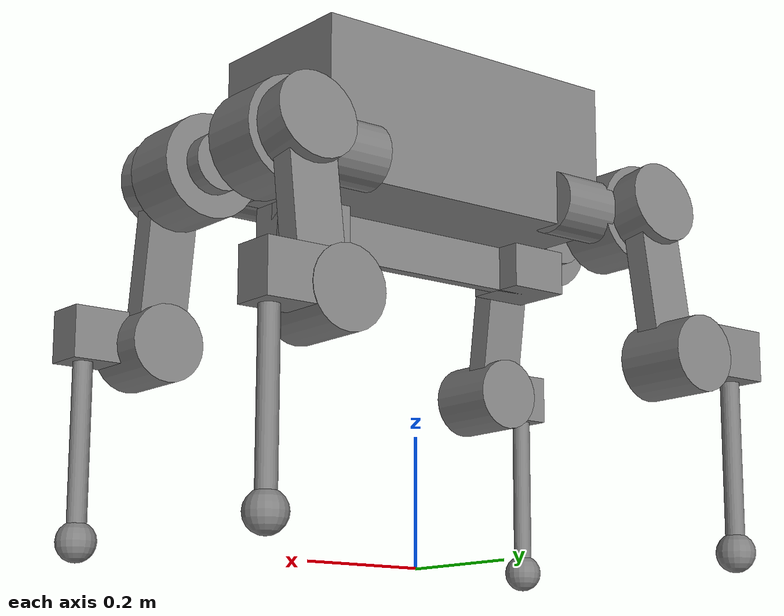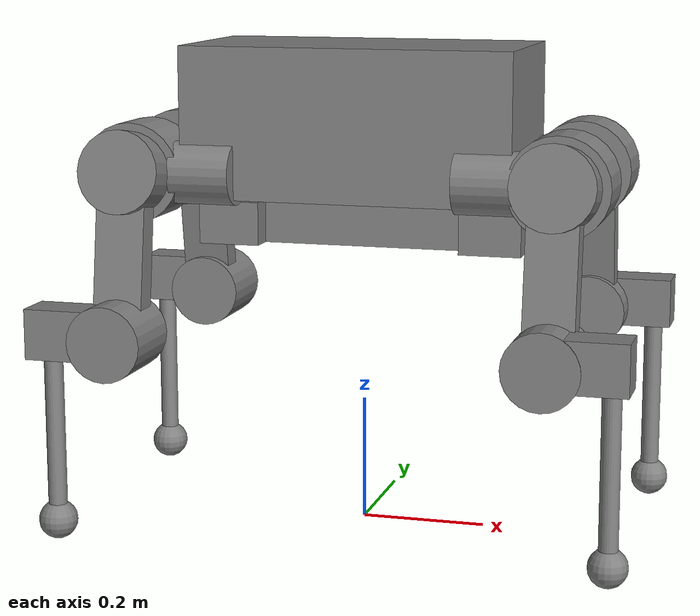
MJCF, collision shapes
<mujoco model="anymal_b">
  <compiler angle="radian" meshdir="assets" texturedir="assets" autolimits="true"/>

  <option cone="elliptic" impratio="100"/>

  <default>
    <default class="anymal_b">
      <mesh scale="0.001 0.001 0.001"/>
      <site group="3" rgba="1 0 0 0.66"/>
      <joint type="hinge" damping="1" frictionloss="0.1"/>
      <default class="HAA">
        <joint axis="1 0 0"/>
      </default>
      <default class="HFE">
        <joint axis="0 1 0"/>
      </default>
      <default class="KFE">
        <joint axis="0 1 0"/>
      </default>
      <geom mass="0"/>
      <default class="visual">
        <geom type="mesh" contype="0" conaffinity="0" group="2"/>
        <default class="visual_zflip">
          <geom quat="0 0 0 1"/>
        </default>
      </default>
      <default class="collision">
        <geom group="3"/>
        <default class="haa_actuator">
          <geom type="cylinder" size="0.05 0.05" euler="0 1.57079632679 0"/>
        </default>
        <default class="belly_plate_bump">
          <geom type="box" size="0.05 0.05 0.035"/>
        </default>
        <default class="mount">
          <geom type="box" size="0.01 0.135 0.045"/>
        </default>
        <default class="protector">
          <geom type="cylinder" size="0.08 0.05"/>
        </default>
        <default class="heatfins">
          <geom type="cylinder" size="0.045 0.015"/>
        </default>
        <default class="thigh_with_fins">
          <geom type="box" size="0.04 0.02 0.125"/>
        </default>
        <default class="kfe_actuator">
          <geom type="cylinder" size="0.06 0.06"/>
        </default>
        <default class="upper_protector">
          <geom type="cylinder" size="0.066 0.06"/>
        </default>
        <default class="shank">
          <geom type="box" size="0.04 0.034 0.065" euler="0 1.57079632679 0"/>
        </default>
        <default class="adapter">
          <geom type="cylinder" size="0.015 0.14" pos="0 0 -0.14"/>
        </default>
        <default class="foot">
          <geom type="sphere" size="0.031" pos="0 0 0.02325" priority="1" solimp="0.015 1 0.031" condim="6"
            friction="0.8 0.02 0.01"/>
        </default>
      </default>
      <default class="affine">
        <joint range="-6.28 6.28"/>
        <motor ctrlrange="-40 40"/>
      </default>
    </default>
  </default>

  <asset>
    <material name="light_gray" rgba="0.8 0.8 0.8 1"/>
    <material name="dark_gray" rgba="0.64 0.64 0.64 1"/>
    <material name="alu_eloxiert" rgba="0.1139 0.1139 0.1139 1"/>
    <material name="any_blau" rgba="0.2399 0.3499 0.5899 1"/>
    <texture name="base_uv_texture" type="2d" file="base_uv_texture.png"/>
    <material name="carbon_fibre_logo" texture="base_uv_texture" specular="1" shininess="1"/>
    <material name="rot_emcy" rgba="0.2611 0.09645 0.0735 1"/>
    <material name="yellow_emcy" rgba="0.5987 0.4607 0.2442 1"/>
    <material name="copper" rgba="0.8 0.4673 0.284 1"/>
    <material name="foam_dark" rgba="0.1 0.1 0.1 1"/>
    <texture name="carbon_uv_texture" type="2d" file="carbon_uv_texture.png"/>
    <material name="carbon_fibre" texture="carbon_uv_texture" specular="1" shininess="1"/>
    <material name="transparent" rgba="1 1 1 0.01" />

    <mesh class="anymal_b" file="anymal_base_0.obj"/>
    <mesh class="anymal_b" file="anymal_base_1.obj"/>
    <mesh class="anymal_b" file="anymal_base_2.obj"/>
    <mesh class="anymal_b" file="anymal_base_3.obj"/>
    <mesh class="anymal_b" file="anymal_base_4.obj"/>
    <mesh class="anymal_b" file="anymal_base_5.obj"/>
    <mesh class="anymal_b" file="anymal_base_6.obj"/>
    <mesh class="anymal_b" file="anymal_base_7.obj"/>
    <mesh class="anymal_b" file="anymal_hip_l_0.obj"/>
    <mesh class="anymal_b" file="anymal_hip_l_1.obj"/>
    <mesh class="anymal_b" file="anymal_hip_l_2.obj"/>
    <mesh class="anymal_b" file="anymal_hip_l_3.obj"/>
    <mesh class="anymal_b" file="anymal_hip_l_4.obj"/>
    <mesh class="anymal_b" file="anymal_hip_l_5.obj"/>
    <mesh class="anymal_b" file="anymal_hip_l_6.obj"/>
    <mesh class="anymal_b" file="anymal_thigh_l_0.obj"/>
    <mesh class="anymal_b" file="anymal_thigh_l_1.obj"/>
    <mesh class="anymal_b" file="anymal_thigh_l_2.obj"/>
    <mesh class="anymal_b" file="anymal_thigh_l_3.obj"/>
    <mesh class="anymal_b" file="anymal_thigh_l_4.obj"/>
    <mesh class="anymal_b" file="anymal_thigh_l_5.obj"/>
    <mesh class="anymal_b" file="anymal_shank_l_0.obj"/>
    <mesh class="anymal_b" file="anymal_shank_l_1.obj"/>
    <mesh class="anymal_b" file="anymal_shank_l_2.obj"/>
    <mesh class="anymal_b" file="anymal_shank_l_3.obj"/>
    <mesh class="anymal_b" file="anymal_hip_r_0.obj"/>
    <mesh class="anymal_b" file="anymal_hip_r_1.obj"/>
    <mesh class="anymal_b" file="anymal_hip_r_2.obj"/>
    <mesh class="anymal_b" file="anymal_hip_r_3.obj"/>
    <mesh class="anymal_b" file="anymal_hip_r_4.obj"/>
    <mesh class="anymal_b" file="anymal_hip_r_5.obj"/>
    <mesh class="anymal_b" file="anymal_hip_r_6.obj"/>
    <mesh class="anymal_b" file="anymal_thigh_r_0.obj"/>
    <mesh class="anymal_b" file="anymal_thigh_r_1.obj"/>
    <mesh class="anymal_b" file="anymal_thigh_r_2.obj"/>
    <mesh class="anymal_b" file="anymal_thigh_r_3.obj"/>
    <mesh class="anymal_b" file="anymal_thigh_r_4.obj"/>
    <mesh class="anymal_b" file="anymal_thigh_r_5.obj"/>
    <mesh class="anymal_b" file="anymal_shank_r_0.obj"/>
    <mesh class="anymal_b" file="anymal_shank_r_1.obj"/>
    <mesh class="anymal_b" file="anymal_shank_r_2.obj"/>
    <mesh class="anymal_b" file="anymal_shank_r_3.obj"/>
    <mesh class="anymal_b" file="anymal_foot_0.obj"/>
    <mesh class="anymal_b" file="anymal_foot_1.obj"/>
    <mesh class="anymal_b" file="anymal_foot_2.obj"/>
    <mesh class="anymal_b" file="anymal_foot_3.obj"/>
  </asset>

  <worldbody>
    <light name="spotlight" mode="targetbodycom" target="base" pos="0 -1 2" cutoff="30"/>
    <body name="base" pos="0 0 0.58" quat="0 0 0 1" childclass="anymal_b">
      <freejoint/>
      <inertial mass="19.2035" pos="0.0025 0 0.0502071" quat="0.5 0.5 0.5 0.5" diaginertia="0.639559 0.624031 0.217374"/>
      <geom class="visual" mesh="anymal_base_0" material="yellow_emcy"/>
      <geom class="visual" mesh="anymal_base_1" material="rot_emcy"/>
      <geom class="visual" mesh="anymal_base_2" material="dark_gray"/>
      <geom class="visual" mesh="anymal_base_3" material="any_blau"/>
      <geom class="visual" mesh="anymal_base_4" material="alu_eloxiert"/>
      <geom class="visual" mesh="anymal_base_5" material="carbon_fibre_logo"/>
      <geom class="visual" mesh="anymal_base_6" material="foam_dark"/>
      <geom class="visual" mesh="anymal_base_7" material="light_gray"/>
      <geom class="collision" size="0.2655 0.135 0.12" pos="0 0 0.08" type="box"/>
      <geom class="haa_actuator" pos="0.227 0.116 0"/>
      <geom class="haa_actuator" pos="0.227 -0.116 0"/>
      <geom class="haa_actuator" pos="-0.227 0.116 0"/>
      <geom class="haa_actuator" pos="-0.227 -0.116 0"/>
      <geom class="belly_plate_bump" pos="0.2155 0 -0.09"/>
      <geom class="belly_plate_bump" pos="-0.2155 0 -0.09"/>
      <geom class="collision" size="0.2655 0.01 0.035" pos="0 0 -0.09" type="box"/>

      <site name="imu" pos="0 0 0"/>

      <body name="LF_HIP" pos="0.277 0.116 0">
        <inertial mass="1.42462" pos="0.0645163 -0.0037871 -0.000152184" quat="0.996866 0.0379822 0.0252009 -0.0646548"
          diaginertia="0.00243341 0.00230249 0.00197758"/>
        <joint name="LF_HAA" class="HAA"/>
        <geom class="visual" mesh="anymal_hip_l_0" material="light_gray"/>
        <geom class="visual" mesh="anymal_hip_l_1" material="copper"/>
        <geom class="visual" mesh="anymal_hip_l_2" material="foam_dark"/>
        <geom class="visual" mesh="anymal_hip_l_3" material="alu_eloxiert"/>
        <geom class="visual" mesh="anymal_hip_l_4" material="any_blau"/>
        <geom class="visual" mesh="anymal_hip_l_5" material="dark_gray"/>
        <geom class="visual" mesh="anymal_hip_l_6" material="light_gray"/>
        <geom class="protector" pos="0.0635 -0.009 0" quat="1 1 0 0"/>
        <geom class="heatfins" pos="0.0635 -0.074 0" quat="1 1 0 0"/>
        <body name="LF_THIGH" pos="0.0635 0.041 0">
          <inertial mass="1.63498" pos="-0.00389797 0.0542266 -0.214583" quat="0.74395 -0.0633414 0.0362707 0.664237"
            diaginertia="0.0122697 0.0120427 0.00228302"/>
          <joint name="LF_HFE" class="HFE"/>
          <geom class="visual" material="any_blau" mesh="anymal_thigh_l_0"/>
          <geom class="visual" material="dark_gray" mesh="anymal_thigh_l_1"/>
          <geom class="visual" material="copper" mesh="anymal_thigh_l_2"/>
          <geom class="visual" material="alu_eloxiert" mesh="anymal_thigh_l_3"/>
          <geom class="visual" material="foam_dark" mesh="anymal_thigh_l_4"/>
          <geom class="visual" material="light_gray" mesh="anymal_thigh_l_5"/>
          <geom class="thigh_with_fins" pos="0 0.035 -0.125" quat="0.997373 0.0724365 0 0"/>
          <geom class="kfe_actuator" pos="0 0.069 -0.25" quat="1 1 0 0"/>
          <geom class="upper_protector" pos="0 -0.005 0" quat="0.654029 0.75647 0 0"/>
          <body name="LF_SHANK" pos="0 0.109 -0.25">
            <inertial mass="0.472163" pos="0.0696396 -0.0132494 -0.150905"
              quat="0.677954 -0.0950614 -0.0578104 0.726636" diaginertia="0.0116034 0.0110666 0.000723761"/>
            <joint name="LF_KFE" class="KFE"/>
            <geom class="visual" material="foam_dark" mesh="anymal_shank_l_0"/>
            <geom class="visual" material="dark_gray" mesh="anymal_shank_l_1"/>
            <geom class="visual" material="light_gray" mesh="anymal_shank_l_2"/>
            <geom class="visual" material="light_gray" mesh="anymal_shank_l_3"/>
            <geom class="shank" pos="0.065 -0.015 0.01" quat="1 0 1 0"/>
            <geom class="visual" material="carbon_fibre" mesh="anymal_foot_0" pos="0.1 -0.02 0.032"/>
            <geom class="visual" material="foam_dark" mesh="anymal_foot_1" pos="0.1 -0.02 0.032"/>
            <geom class="visual" material="dark_gray" mesh="anymal_foot_2" pos="0.1 -0.02 0.032"/>
            <geom class="visual" material="light_gray" mesh="anymal_foot_3" pos="0.1 -0.02 0.032"/>
            <geom class="adapter" pos="0.1 -0.02 -0.160625"/>
            <geom class="foot" pos="0.1 -0.02 -0.298"/>
            <site name="FL_touch" pos="0.1 -0.02 -0.298" size="0.032" material="transparent"/>
          </body>
        </body>
      </body>
      <body name="RF_HIP" pos="0.277 -0.116 0">
        <inertial mass="1.42462" pos="0.0645163 0.0037871 -0.000152184" quat="0.996866 -0.0379822 0.0252009 0.0646548"
          diaginertia="0.00243341 0.00230249 0.00197758"/>
        <joint name="RF_HAA" class="HAA"/>
        <geom class="visual" material="light_gray" mesh="anymal_hip_r_0"/>
        <geom class="visual" material="copper" mesh="anymal_hip_r_1"/>
        <geom class="visual" material="foam_dark" mesh="anymal_hip_r_2"/>
        <geom class="visual" material="alu_eloxiert" mesh="anymal_hip_r_3"/>
        <geom class="visual" material="any_blau" mesh="anymal_hip_r_4"/>
        <geom class="visual" material="dark_gray" mesh="anymal_hip_r_5"/>
        <geom class="visual" material="light_gray" mesh="anymal_hip_r_6"/>
        <geom class="protector" pos="0.0635 0.009 0" quat="1 1 0 0"/>
        <geom class="heatfins" pos="0.0635 0.074 0" quat="1 1 0 0"/>
        <body name="RF_THIGH" pos="0.0635 -0.041 0">
          <inertial mass="1.63498" pos="-0.00389797 -0.0542266 -0.214583" quat="0.664237 0.0362707 -0.0633414 0.74395"
            diaginertia="0.0122697 0.0120427 0.00228302"/>
          <joint name="RF_HFE" class="HFE"/>
          <geom class="visual" material="any_blau" mesh="anymal_thigh_r_0"/>
          <geom class="visual" material="dark_gray" mesh="anymal_thigh_r_1"/>
          <geom class="visual" material="copper" mesh="anymal_thigh_r_2"/>
          <geom class="visual" material="alu_eloxiert" mesh="anymal_thigh_r_3"/>
          <geom class="visual" material="foam_dark" mesh="anymal_thigh_r_4"/>
          <geom class="visual" material="light_gray" mesh="anymal_thigh_r_5"/>
          <geom class="thigh_with_fins" pos="0 -0.035 -0.125" quat="0.997373 -0.0724365 0 0"/>
          <geom class="kfe_actuator" pos="0 -0.069 -0.25" quat="1 1 0 0"/>
          <geom class="upper_protector" pos="0 0.005 0" quat="0.654029 -0.75647 0 0"/>
          <body name="RF_SHANK" pos="0 -0.109 -0.25">
            <inertial mass="0.472163" pos="0.0696396 0.0132494 -0.150905" quat="0.726636 -0.0578104 -0.0950614 0.677954"
              diaginertia="0.0116034 0.0110666 0.000723761"/>
            <joint name="RF_KFE" class="KFE"/>
            <geom class="visual" material="foam_dark" mesh="anymal_shank_r_0"/>
            <geom class="visual" material="dark_gray" mesh="anymal_shank_r_1"/>
            <geom class="visual" material="light_gray" mesh="anymal_shank_r_2"/>
            <geom class="visual" material="light_gray" mesh="anymal_shank_r_3"/>
            <geom class="shank" pos="0.065 0.015 0.01" quat="1 0 1 0"/>
            <geom class="visual" material="carbon_fibre" mesh="anymal_foot_0" pos="0.1 0.02 0.032"/>
            <geom class="visual" material="foam_dark" mesh="anymal_foot_1" pos="0.1 0.02 0.032"/>
            <geom class="visual" material="dark_gray" mesh="anymal_foot_2" pos="0.1 0.02 0.032"/>
            <geom class="visual" material="light_gray" mesh="anymal_foot_3" pos="0.1 0.02 0.032"/>
            <geom class="adapter" pos="0.1 0.02 -0.160625"/>
            <geom class="foot" pos="0.1 0.02 -0.298"/>
            <site name="FR_touch" pos="0.1 -0.02 -0.298" size="0.032" material="transparent"/>
          </body>
        </body>
      </body>
      <body name="LH_HIP" pos="-0.277 0.116 0">
        <inertial mass="1.42462" pos="-0.0645163 -0.0037871 -0.000152184" quat="0.996866 0.0379822 -0.0252009 0.0646548"
          diaginertia="0.00243341 0.00230249 0.00197758"/>
        <joint name="LH_HAA" class="HAA"/>
        <geom class="visual_zflip" material="light_gray" mesh="anymal_hip_r_0"/>
        <geom class="visual_zflip" material="copper" mesh="anymal_hip_r_1"/>
        <geom class="visual_zflip" material="foam_dark" mesh="anymal_hip_r_2"/>
        <geom class="visual_zflip" material="alu_eloxiert" mesh="anymal_hip_r_3"/>
        <geom class="visual_zflip" material="any_blau" mesh="anymal_hip_r_4"/>
        <geom class="visual_zflip" material="dark_gray" mesh="anymal_hip_r_5"/>
        <geom class="visual_zflip" material="light_gray" mesh="anymal_hip_r_6"/>
        <geom class="protector" pos="-0.0635 -0.009 0" quat="1 -1 0 0"/>
        <geom class="heatfins" pos="-0.0635 -0.074 0" quat="1 -1 0 0"/>
        <body name="LH_THIGH" pos="-0.0635 0.041 0">
          <inertial mass="1.63498" pos="0.00389797 0.0542266 -0.214583" quat="0.664237 -0.0362707 0.0633414 0.74395"
            diaginertia="0.0122697 0.0120427 0.00228302"/>
          <joint name="LH_HFE" class="HFE"/>
          <geom class="visual_zflip" material="any_blau" mesh="anymal_thigh_r_0"/>
          <geom class="visual_zflip" material="dark_gray" mesh="anymal_thigh_r_1"/>
          <geom class="visual_zflip" material="copper" mesh="anymal_thigh_r_2"/>
          <geom class="visual_zflip" material="alu_eloxiert" mesh="anymal_thigh_r_3"/>
          <geom class="visual_zflip" material="foam_dark" mesh="anymal_thigh_r_4"/>
          <geom class="visual_zflip" material="light_gray" mesh="anymal_thigh_r_5"/>
          <geom class="thigh_with_fins" pos="0 0.035 -0.125" quat="0.997373 0.0724365 0 0"/>
          <geom class="kfe_actuator" pos="0 0.069 -0.25" quat="1 1 0 0"/>
          <geom class="upper_protector" pos="0 -0.005 0" quat="0.654029 0.75647 0 0"/>
          <body name="LH_SHANK" pos="0 0.109 -0.25">
            <inertial mass="0.472163" pos="-0.0696396 -0.0132494 -0.150905" quat="0.726636 0.0578104 0.0950615 0.677954"
              diaginertia="0.0116034 0.0110666 0.000723761"/>
            <joint name="LH_KFE" class="KFE"/>
            <geom class="visual_zflip" material="foam_dark" mesh="anymal_shank_r_0"/>
            <geom class="visual_zflip" material="dark_gray" mesh="anymal_shank_r_1"/>
            <geom class="visual_zflip" material="light_gray" mesh="anymal_shank_r_2"/>
            <geom class="visual_zflip" material="light_gray" mesh="anymal_shank_r_3"/>
            <geom class="shank" pos="-0.065 -0.015 0.01" quat="1 0 1 0"/>
            <geom class="visual_zflip" material="carbon_fibre" mesh="anymal_foot_0" pos="-0.1 -0.02 0.032"/>
            <geom class="visual_zflip" material="foam_dark" mesh="anymal_foot_1" pos="-0.1 -0.02 0.032"/>
            <geom class="visual_zflip" material="dark_gray" mesh="anymal_foot_2" pos="-0.1 -0.02 0.032"/>
            <geom class="visual_zflip" material="light_gray" mesh="anymal_foot_3" pos="-0.1 -0.02 0.032"/>
            <geom class="adapter" pos="-0.1 -0.02 -0.160625"/>
            <geom class="foot" pos="-0.1 -0.02 -0.298"/>
            <site name="RL_touch" pos="0.1 -0.02 -0.298" size="0.032" material="transparent"/>
          </body>
        </body>
      </body>
      <body name="RH_HIP" pos="-0.277 -0.116 0">
        <inertial mass="1.42462" pos="-0.0645163 0.0037871 -0.000152184"
          quat="0.996866 -0.0379822 -0.0252009 -0.0646548" diaginertia="0.00243341 0.00230249 0.00197758"/>
        <joint name="RH_HAA" class="HAA"/>
        <geom class="visual_zflip" mesh="anymal_hip_l_0" material="light_gray"/>
        <geom class="visual_zflip" mesh="anymal_hip_l_1" material="copper"/>
        <geom class="visual_zflip" mesh="anymal_hip_l_2" material="foam_dark"/>
        <geom class="visual_zflip" mesh="anymal_hip_l_3" material="alu_eloxiert"/>
        <geom class="visual_zflip" mesh="anymal_hip_l_4" material="any_blau"/>
        <geom class="visual_zflip" mesh="anymal_hip_l_5" material="dark_gray"/>
        <geom class="visual_zflip" mesh="anymal_hip_l_6" material="light_gray"/>
        <geom class="protector" pos="-0.0635 0.009 0" quat="1 -1 0 0"/>
        <geom class="heatfins" pos="-0.0635 0.074 0" quat="1 -1 0 0"/>
        <body name="RH_THIGH" pos="-0.0635 -0.041 0">
          <inertial mass="1.63498" pos="0.00389797 -0.0542266 -0.214583" quat="0.74395 0.0633414 -0.0362707 0.664237"
            diaginertia="0.0122697 0.0120427 0.00228302"/>
          <joint name="RH_HFE" class="HFE"/>
          <geom class="visual_zflip" material="any_blau" mesh="anymal_thigh_l_0"/>
          <geom class="visual_zflip" material="dark_gray" mesh="anymal_thigh_l_1"/>
          <geom class="visual_zflip" material="copper" mesh="anymal_thigh_l_2"/>
          <geom class="visual_zflip" material="alu_eloxiert" mesh="anymal_thigh_l_3"/>
          <geom class="visual_zflip" material="foam_dark" mesh="anymal_thigh_l_4"/>
          <geom class="visual_zflip" material="light_gray" mesh="anymal_thigh_l_5"/>
          <geom class="thigh_with_fins" pos="0 -0.035 -0.125" quat="0.997373 -0.0724365 0 0"/>
          <geom class="kfe_actuator" pos="0 -0.069 -0.25" quat="1 1 0 0"/>
          <geom class="upper_protector" pos="0 0.005 0" quat="0.654029 -0.75647 0 0"/>
          <body name="RH_SHANK" pos="0 -0.109 -0.25">
            <inertial mass="0.472163" pos="-0.0696396 0.0132494 -0.150905" quat="0.677954 0.0950614 0.0578104 0.726636"
              diaginertia="0.0116034 0.0110666 0.000723761"/>
            <joint name="RH_KFE" class="KFE"/>
            <geom class="visual_zflip" material="foam_dark" mesh="anymal_shank_l_0"/>
            <geom class="visual_zflip" material="dark_gray" mesh="anymal_shank_l_1"/>
            <geom class="visual_zflip" material="light_gray" mesh="anymal_shank_l_2"/>
            <geom class="visual_zflip" material="light_gray" mesh="anymal_shank_l_3"/>
            <geom class="shank" pos="-0.065 0.015 0.01" quat="1 0 1 0"/>
            <geom class="visual_zflip" material="carbon_fibre" mesh="anymal_foot_0" pos="-0.1 0.02 0.032"/>
            <geom class="visual_zflip" material="foam_dark" mesh="anymal_foot_1" pos="-0.1 0.02 0.032"/>
            <geom class="visual_zflip" material="dark_gray" mesh="anymal_foot_2" pos="-0.1 0.02 0.032"/>
            <geom class="visual_zflip" material="light_gray" mesh="anymal_foot_3" pos="-0.1 0.02 0.032"/>
            <geom class="adapter" pos="-0.1 0.02 -0.160625"/>
            <geom class="foot" pos="-0.1 0.02 -0.298"/>
            <site name="RR_touch" pos="0.1 -0.02 -0.298" size="0.032" material="transparent"/>
          </body>
        </body>
      </body>
    </body>
  </worldbody>

  <contact>
    <exclude body1="base" body2="LF_THIGH"/>
    <exclude body1="base" body2="RF_THIGH"/>
    <exclude body1="base" body2="LH_THIGH"/>
    <exclude body1="base" body2="RH_THIGH"/>
  </contact>

  <actuator>
    <motor class="affine" name="FR_hip" joint="RF_HAA" />
    <motor class="affine" name="FR_thigh" joint="RF_HFE" />
    <motor class="affine" name="FR_calf" joint="RF_KFE" />
    <motor class="affine" name="FL_hip" joint="LF_HAA" />
    <motor class="affine" name="FL_thigh" joint="LF_HFE" />
    <motor class="affine" name="FL_calf" joint="LF_KFE" />
    <motor class="affine" name="RR_hip" joint="RH_HAA" />
    <motor class="affine" name="RR_thigh" joint="RH_HFE" />
    <motor class="affine" name="RR_calf" joint="RH_KFE" />
    <motor class="affine" name="RL_hip" joint="LH_HAA" />
    <motor class="affine" name="RL_thigh" joint="LH_HFE" />
    <motor class="affine" name="RL_calf" joint="LH_KFE" />
  </actuator>

  <sensor>
    <jointpos name="FR_hip_pos" joint="RF_HAA" />
    <jointpos name="FR_thigh_pos" joint="RF_HFE" />
    <jointpos name="FR_calf_pos" joint="RF_KFE" />
    <jointpos name="FL_hip_pos" joint="LF_HAA" />
    <jointpos name="FL_thigh_pos" joint="LF_HFE" />
    <jointpos name="FL_calf_pos" joint="LF_KFE" />
    <jointpos name="RR_hip_pos" joint="RH_HAA" />
    <jointpos name="RR_thigh_pos" joint="RH_HFE" />
    <jointpos name="RR_calf_pos" joint="RH_KFE" />
    <jointpos name="RL_hip_pos" joint="LH_HAA" />
    <jointpos name="RL_thigh_pos" joint="LH_HFE" />
    <jointpos name="RL_calf_pos" joint="LH_KFE" />

    <jointvel name="FR_hip_vel" joint="RF_HAA" />
    <jointvel name="FR_thigh_vel" joint="RF_HFE" />
    <jointvel name="FR_calf_vel" joint="RF_KFE" />
    <jointvel name="FL_hip_vel" joint="LF_HAA" />
    <jointvel name="FL_thigh_vel" joint="LF_HFE" />
    <jointvel name="FL_calf_vel" joint="LF_KFE" />
    <jointvel name="RR_hip_vel" joint="RH_HAA" />
    <jointvel name="RR_thigh_vel" joint="RH_HFE" />
    <jointvel name="RR_calf_vel" joint="RH_KFE" />
    <jointvel name="RL_hip_vel" joint="LH_HAA" />
    <jointvel name="RL_thigh_vel" joint="LH_HFE" />
    <jointvel name="RL_calf_vel" joint="LH_KFE" />

    <jointactuatorfrc name="FR_hip_torque" joint="RF_HAA" noise="0.01" />
    <jointactuatorfrc name="FR_thigh_torque" joint="RF_HFE" noise="0.01" />
    <jointactuatorfrc name="FR_calf_torque" joint="RF_KFE" noise="0.01" />
    <jointactuatorfrc name="FL_hip_torque" joint="LF_HAA" noise="0.01" />
    <jointactuatorfrc name="FL_thigh_torque" joint="LF_HFE" noise="0.01" />
    <jointactuatorfrc name="FL_calf_torque" joint="LF_KFE" noise="0.01" />
    <jointactuatorfrc name="RR_hip_torque" joint="RH_HAA" noise="0.01" />
    <jointactuatorfrc name="RR_thigh_torque" joint="RH_HFE" noise="0.01" />
    <jointactuatorfrc name="RR_calf_torque" joint="RH_KFE" noise="0.01" />
    <jointactuatorfrc name="RL_hip_torque" joint="LH_HAA" noise="0.01" />
    <jointactuatorfrc name="RL_thigh_torque" joint="LH_HFE" noise="0.01" />
    <jointactuatorfrc name="RL_calf_torque" joint="LH_KFE" noise="0.01" />

    <framequat name="imu_quat" objtype="site" objname="imu" />
    <gyro name="imu_gyro" site="imu" />
    <accelerometer name="imu_acc" site="imu" />

    <framepos name="frame_pos" objtype="site" objname="imu" />
    <framelinvel name="frame_vel" objtype="site" objname="imu" />

    <touch name="FR_touch" site="FR_touch" />
    <touch name="FL_touch" site="FL_touch" />
    <touch name="RR_touch" site="RR_touch" />
    <touch name="RL_touch" site="RL_touch" />
  </sensor>
</mujoco>
